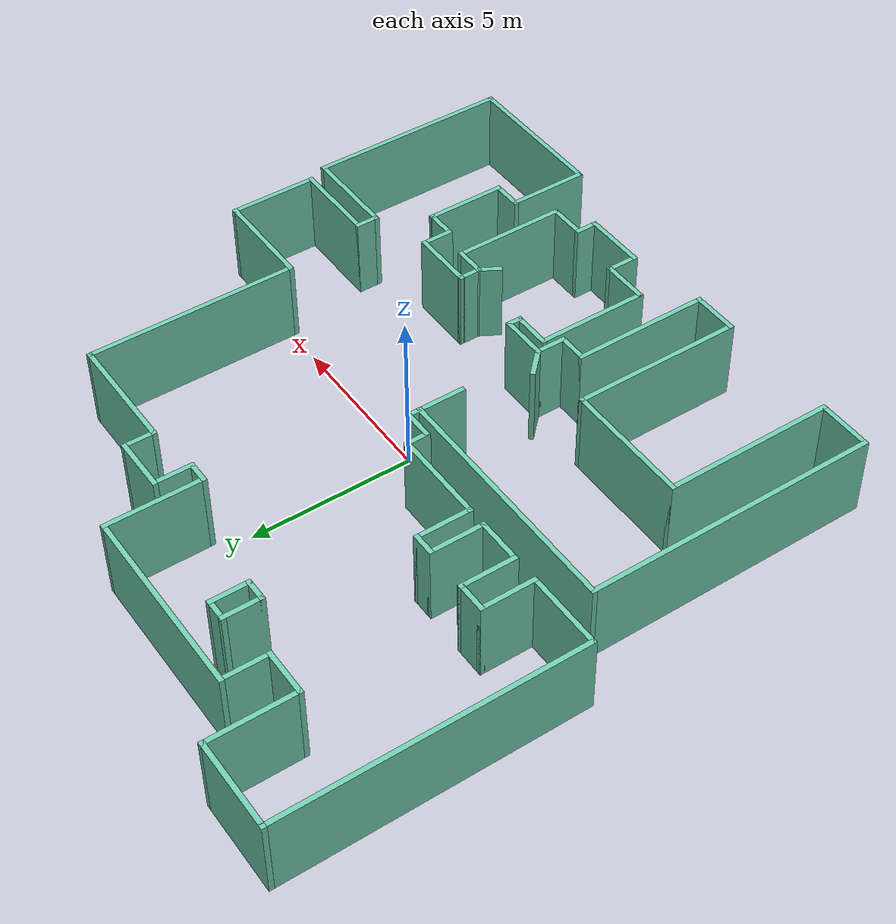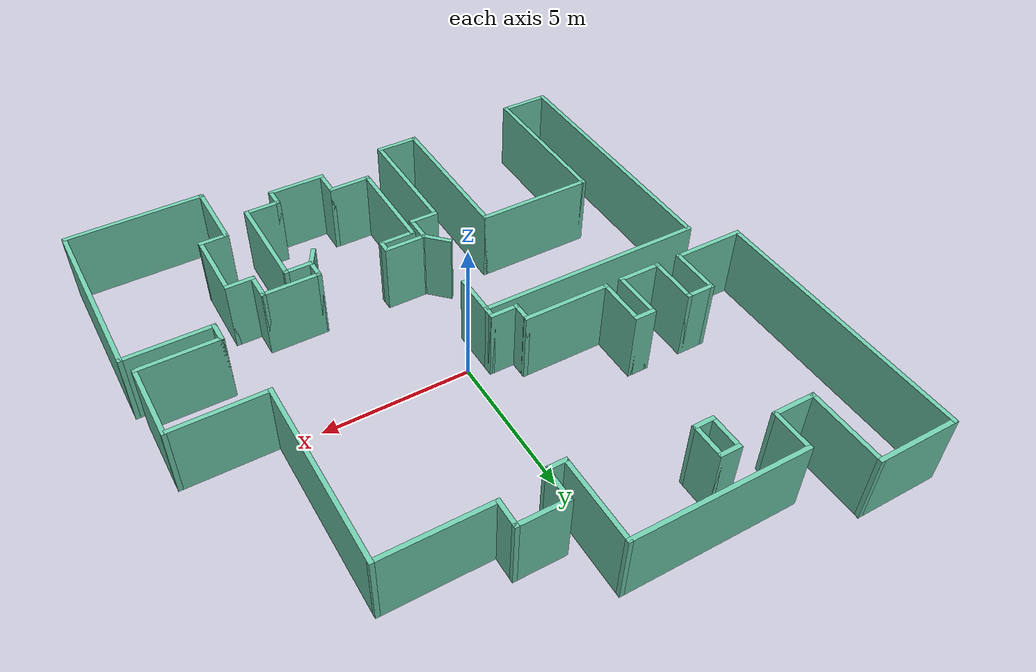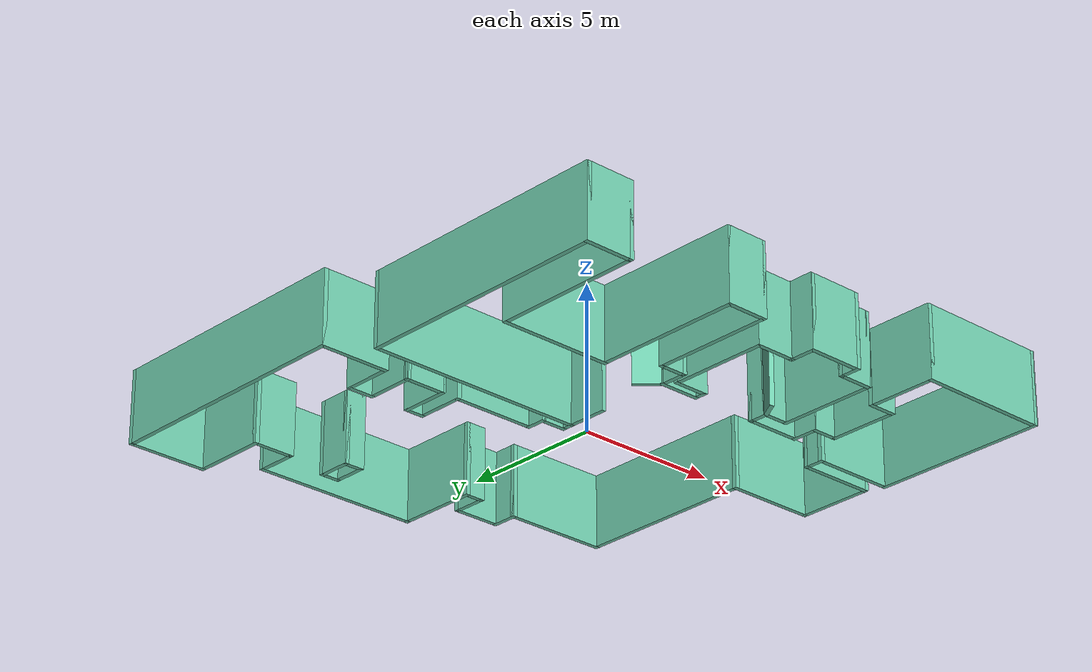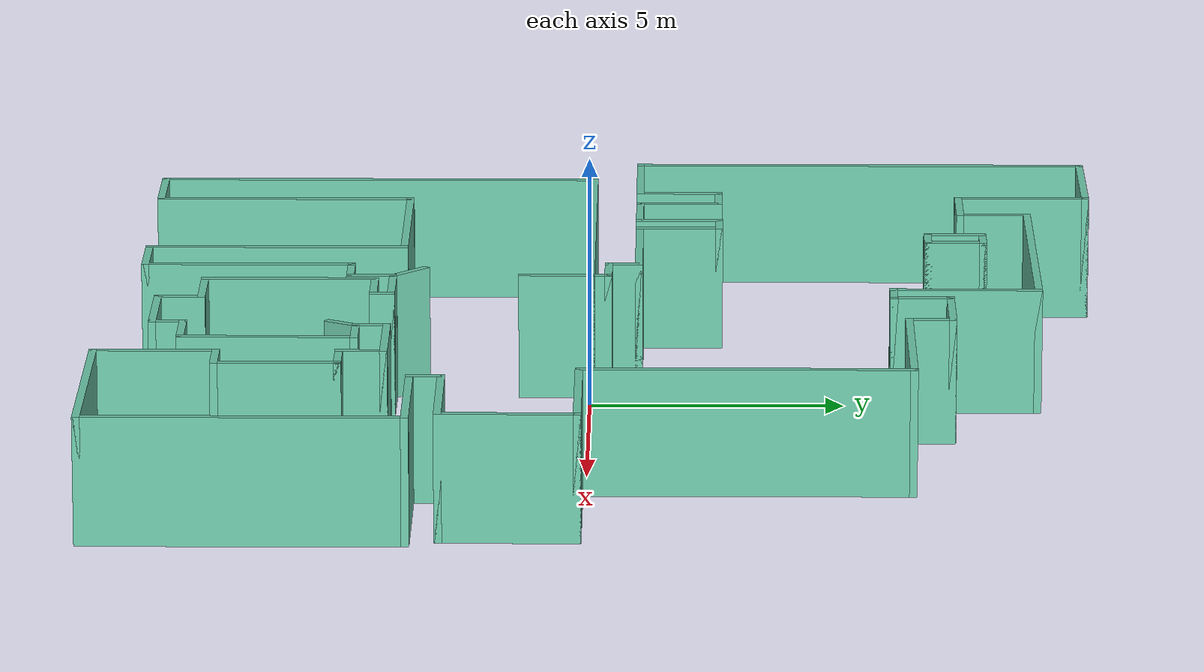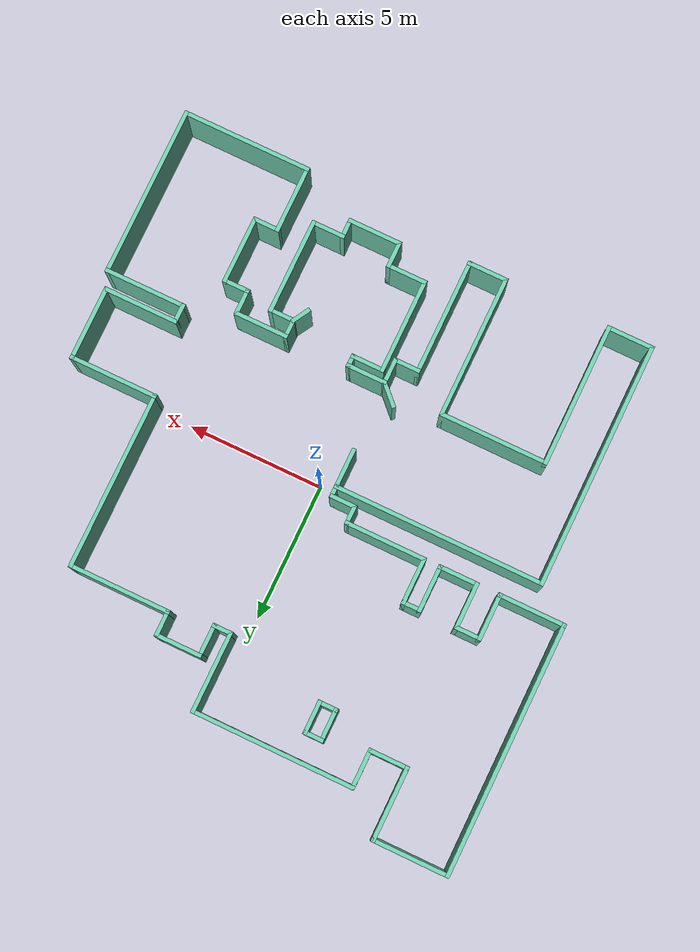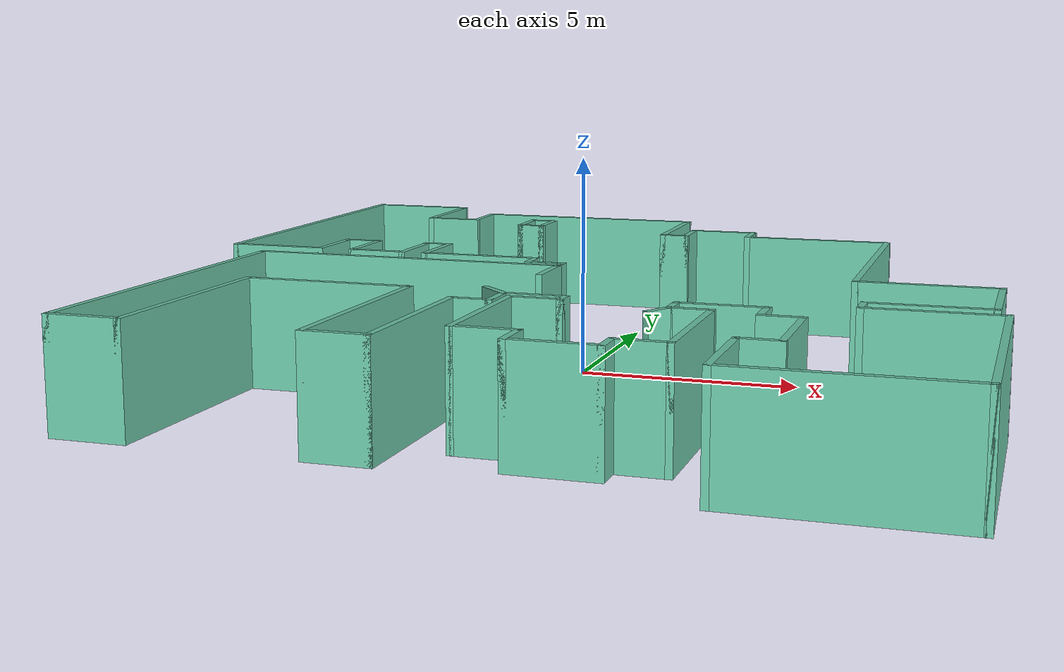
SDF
<?xml version='1.0'?>
<sdf version='1.6'>
  <model name='map_119'>
    <pose frame=''>0.052995 0.309843 0 0 -0 0</pose>
    <link name='Wall_10'>
      <collision name='Wall_10_Collision'>
        <geometry>
          <box>
            <size>9.25 0.15 2.5</size>
          </box>
        </geometry>
        <pose frame=''>0 0 1.25 0 -0 0</pose>
      </collision>
      <visual name='Wall_10_Visual'>
        <pose frame=''>0 0 1.25 0 -0 0</pose>
        <geometry>
          <box>
            <size>9.25 0.15 2.5</size>
          </box>
        </geometry>
        <material>
          <script>
            <uri>file://media/materials/scripts/gazebo.material</uri>
            <name>Gazebo/Grey</name>
          </script>
          <ambient>0.435294 0.796078 0.67451 1</ambient>
        </material>
        <meta>
          <layer>0</layer>
        </meta>
      </visual>
      <pose frame=''>-9.525 5.2 0 0 -0 -1.5708</pose>
    </link>
    <link name='Wall_100'>
      <collision name='Wall_100_Collision'>
        <geometry>
          <box>
            <size>1.25 0.15 2.5</size>
          </box>
        </geometry>
        <pose frame=''>0 0 1.25 0 -0 0</pose>
      </collision>
      <visual name='Wall_100_Visual'>
        <pose frame=''>0 0 1.25 0 -0 0</pose>
        <geometry>
          <box>
            <size>1.25 0.15 2.5</size>
          </box>
        </geometry>
        <material>
          <script>
            <uri>file://media/materials/scripts/gazebo.material</uri>
            <name>Gazebo/Grey</name>
          </script>
          <ambient>0.435294 0.796078 0.67451 1</ambient>
        </material>
        <meta>
          <layer>0</layer>
        </meta>
      </visual>
      <pose frame=''>-3.28112 6.98822 0 0 -0 -1.5708</pose>
    </link>
    <link name='Wall_101'>
      <collision name='Wall_101_Collision'>
        <geometry>
          <box>
            <size>0.75 0.15 2.5</size>
          </box>
        </geometry>
        <pose frame=''>0 0 1.25 0 -0 0</pose>
      </collision>
      <visual name='Wall_101_Visual'>
        <pose frame=''>0 0 1.25 0 -0 0</pose>
        <geometry>
          <box>
            <size>0.75 0.15 2.5</size>
          </box>
        </geometry>
        <material>
          <script>
            <uri>file://media/materials/scripts/gazebo.material</uri>
            <name>Gazebo/Grey</name>
          </script>
          <ambient>0.435294 0.796078 0.67451 1</ambient>
        </material>
        <meta>
          <layer>0</layer>
        </meta>
      </visual>
      <pose frame=''>-3.58112 6.43822 0 0 -0 3.14159</pose>
    </link>
    <link name='Wall_12'>
      <collision name='Wall_12_Collision'>
        <geometry>
          <box>
            <size>2.5 0.15 2.5</size>
          </box>
        </geometry>
        <pose frame=''>0 0 1.25 0 -0 0</pose>
      </collision>
      <visual name='Wall_12_Visual'>
        <pose frame=''>0 0 1.25 0 -0 0</pose>
        <geometry>
          <box>
            <size>2.5 0.15 2.5</size>
          </box>
        </geometry>
        <material>
          <script>
            <uri>file://media/materials/scripts/gazebo.material</uri>
            <name>Gazebo/Grey</name>
          </script>
          <ambient>0.435294 0.796078 0.67451 1</ambient>
        </material>
        <meta>
          <layer>0</layer>
        </meta>
      </visual>
      <pose frame=''>-8.35 0.65 0 0 -0 0</pose>
    </link>
    <link name='Wall_13'>
      <collision name='Wall_13_Collision'>
        <geometry>
          <box>
            <size>1.75 0.15 2.5</size>
          </box>
        </geometry>
        <pose frame=''>0 0 1.25 0 -0 0</pose>
      </collision>
      <visual name='Wall_13_Visual'>
        <pose frame=''>0 0 1.25 0 -0 0</pose>
        <geometry>
          <box>
            <size>1.75 0.15 2.5</size>
          </box>
        </geometry>
        <material>
          <script>
            <uri>file://media/materials/scripts/gazebo.material</uri>
            <name>Gazebo/Grey</name>
          </script>
          <ambient>0.435294 0.796078 0.67451 1</ambient>
        </material>
        <meta>
          <layer>0</layer>
        </meta>
      </visual>
      <pose frame=''>-7.175 1.45 0 0 -0 1.5708</pose>
    </link>
    <link name='Wall_14'>
      <collision name='Wall_14_Collision'>
        <geometry>
          <box>
            <size>1 0.15 2.5</size>
          </box>
        </geometry>
        <pose frame=''>0 0 1.25 0 -0 0</pose>
      </collision>
      <visual name='Wall_14_Visual'>
        <pose frame=''>0 0 1.25 0 -0 0</pose>
        <geometry>
          <box>
            <size>1 0.15 2.5</size>
          </box>
        </geometry>
        <material>
          <script>
            <uri>file://media/materials/scripts/gazebo.material</uri>
            <name>Gazebo/Grey</name>
          </script>
          <ambient>0.435294 0.796078 0.67451 1</ambient>
        </material>
        <meta>
          <layer>0</layer>
        </meta>
      </visual>
      <pose frame=''>-6.75 2.25 0 0 -0 0</pose>
    </link>
    <link name='Wall_15'>
      <collision name='Wall_15_Collision'>
        <geometry>
          <box>
            <size>1.75 0.15 2.5</size>
          </box>
        </geometry>
        <pose frame=''>0 0 1.25 0 -0 0</pose>
      </collision>
      <visual name='Wall_15_Visual'>
        <pose frame=''>0 0 1.25 0 -0 0</pose>
        <geometry>
          <box>
            <size>1.75 0.15 2.5</size>
          </box>
        </geometry>
        <material>
          <script>
            <uri>file://media/materials/scripts/gazebo.material</uri>
            <name>Gazebo/Grey</name>
          </script>
          <ambient>0.435294 0.796078 0.67451 1</ambient>
        </material>
        <meta>
          <layer>0</layer>
        </meta>
      </visual>
      <pose frame=''>-6.325 1.45 0 0 -0 -1.5708</pose>
    </link>
    <link name='Wall_21'>
      <collision name='Wall_21_Collision'>
        <geometry>
          <box>
            <size>1.5 0.15 2.5</size>
          </box>
        </geometry>
        <pose frame=''>0 0 1.25 0 -0 0</pose>
      </collision>
      <visual name='Wall_21_Visual'>
        <pose frame=''>0 0 1.25 0 -0 0</pose>
        <geometry>
          <box>
            <size>1.5 0.15 2.5</size>
          </box>
        </geometry>
        <material>
          <script>
            <uri>file://media/materials/scripts/gazebo.material</uri>
            <name>Gazebo/Grey</name>
          </script>
          <ambient>0.435294 0.796078 0.67451 1</ambient>
        </material>
        <meta>
          <layer>0</layer>
        </meta>
      </visual>
      <pose frame=''>-5.65 0.65 0 0 -0 0</pose>
    </link>
    <link name='Wall_22'>
      <collision name='Wall_22_Collision'>
        <geometry>
          <box>
            <size>1.75 0.15 2.5</size>
          </box>
        </geometry>
        <pose frame=''>0 0 1.25 0 -0 0</pose>
      </collision>
      <visual name='Wall_22_Visual'>
        <pose frame=''>0 0 1.25 0 -0 0</pose>
        <geometry>
          <box>
            <size>1.75 0.15 2.5</size>
          </box>
        </geometry>
        <material>
          <script>
            <uri>file://media/materials/scripts/gazebo.material</uri>
            <name>Gazebo/Grey</name>
          </script>
          <ambient>0.435294 0.796078 0.67451 1</ambient>
        </material>
        <meta>
          <layer>0</layer>
        </meta>
      </visual>
      <pose frame=''>-4.975 1.45 0 0 -0 1.5708</pose>
    </link>
    <link name='Wall_23'>
      <collision name='Wall_23_Collision'>
        <geometry>
          <box>
            <size>0.75 0.15 2.5</size>
          </box>
        </geometry>
        <pose frame=''>0 0 1.25 0 -0 0</pose>
      </collision>
      <visual name='Wall_23_Visual'>
        <pose frame=''>0 0 1.25 0 -0 0</pose>
        <geometry>
          <box>
            <size>0.75 0.15 2.5</size>
          </box>
        </geometry>
        <material>
          <script>
            <uri>file://media/materials/scripts/gazebo.material</uri>
            <name>Gazebo/Grey</name>
          </script>
          <ambient>0.435294 0.796078 0.67451 1</ambient>
        </material>
        <meta>
          <layer>0</layer>
        </meta>
      </visual>
      <pose frame=''>-4.675 2.25 0 0 -0 0</pose>
    </link>
    <link name='Wall_24'>
      <collision name='Wall_24_Collision'>
        <geometry>
          <box>
            <size>1.75 0.15 2.5</size>
          </box>
        </geometry>
        <pose frame=''>0 0 1.25 0 -0 0</pose>
      </collision>
      <visual name='Wall_24_Visual'>
        <pose frame=''>0 0 1.25 0 -0 0</pose>
        <geometry>
          <box>
            <size>1.75 0.15 2.5</size>
          </box>
        </geometry>
        <material>
          <script>
            <uri>file://media/materials/scripts/gazebo.material</uri>
            <name>Gazebo/Grey</name>
          </script>
          <ambient>0.435294 0.796078 0.67451 1</ambient>
        </material>
        <meta>
          <layer>0</layer>
        </meta>
      </visual>
      <pose frame=''>-4.375 1.45 0 0 -0 -1.5708</pose>
    </link>
    <link name='Wall_25'>
      <collision name='Wall_25_Collision'>
        <geometry>
          <box>
            <size>3 0.15 2.5</size>
          </box>
        </geometry>
        <pose frame=''>0 0 1.25 0 -0 0</pose>
      </collision>
      <visual name='Wall_25_Visual'>
        <pose frame=''>0 0 1.25 0 -0 0</pose>
        <geometry>
          <box>
            <size>3 0.15 2.5</size>
          </box>
        </geometry>
        <material>
          <script>
            <uri>file://media/materials/scripts/gazebo.material</uri>
            <name>Gazebo/Grey</name>
          </script>
          <ambient>0.435294 0.796078 0.67451 1</ambient>
        </material>
        <meta>
          <layer>0</layer>
        </meta>
      </visual>
      <pose frame=''>-2.95 0.65 0 0 -0 0</pose>
    </link>
    <link name='Wall_26'>
      <collision name='Wall_26_Collision'>
        <geometry>
          <box>
            <size>0.75 0.15 2.5</size>
          </box>
        </geometry>
        <pose frame=''>0 0 1.25 0 -0 0</pose>
      </collision>
      <visual name='Wall_26_Visual'>
        <pose frame=''>0 0 1.25 0 -0 0</pose>
        <geometry>
          <box>
            <size>0.75 0.15 2.5</size>
          </box>
        </geometry>
        <material>
          <script>
            <uri>file://media/materials/scripts/gazebo.material</uri>
            <name>Gazebo/Grey</name>
          </script>
          <ambient>0.435294 0.796078 0.67451 1</ambient>
        </material>
        <meta>
          <layer>0</layer>
        </meta>
      </visual>
      <pose frame=''>-1.525 0.35 0 0 -0 -1.5708</pose>
    </link>
    <link name='Wall_27'>
      <collision name='Wall_27_Collision'>
        <geometry>
          <box>
            <size>1 0.15 2.5</size>
          </box>
        </geometry>
        <pose frame=''>0 0 1.25 0 -0 0</pose>
      </collision>
      <visual name='Wall_27_Visual'>
        <pose frame=''>0 0 1.25 0 -0 0</pose>
        <geometry>
          <box>
            <size>1 0.15 2.5</size>
          </box>
        </geometry>
        <material>
          <script>
            <uri>file://media/materials/scripts/gazebo.material</uri>
            <name>Gazebo/Grey</name>
          </script>
          <ambient>0.435294 0.796078 0.67451 1</ambient>
        </material>
        <meta>
          <layer>0</layer>
        </meta>
      </visual>
      <pose frame=''>-1.1 0.05 0 0 -0 0</pose>
    </link>
    <link name='Wall_30'>
      <collision name='Wall_30_Collision'>
        <geometry>
          <box>
            <size>0.5 0.15 2.5</size>
          </box>
        </geometry>
        <pose frame=''>0 0 1.25 0 -0 0</pose>
      </collision>
      <visual name='Wall_30_Visual'>
        <pose frame=''>0 0 1.25 0 -0 0</pose>
        <geometry>
          <box>
            <size>0.5 0.15 2.5</size>
          </box>
        </geometry>
        <material>
          <script>
            <uri>file://media/materials/scripts/gazebo.material</uri>
            <name>Gazebo/Grey</name>
          </script>
          <ambient>0.435294 0.796078 0.67451 1</ambient>
        </material>
        <meta>
          <layer>0</layer>
        </meta>
      </visual>
      <pose frame=''>-0.675 -0.125 0 0 -0 -1.5708</pose>
    </link>
    <link name='Wall_31'>
      <collision name='Wall_31_Collision'>
        <geometry>
          <box>
            <size>7.75 0.15 2.5</size>
          </box>
        </geometry>
        <pose frame=''>0 0 1.25 0 -0 0</pose>
      </collision>
      <visual name='Wall_31_Visual'>
        <pose frame=''>0 0 1.25 0 -0 0</pose>
        <geometry>
          <box>
            <size>7.75 0.15 2.5</size>
          </box>
        </geometry>
        <material>
          <script>
            <uri>file://media/materials/scripts/gazebo.material</uri>
            <name>Gazebo/Grey</name>
          </script>
          <ambient>0.435294 0.796078 0.67451 1</ambient>
        </material>
        <meta>
          <layer>0</layer>
        </meta>
      </visual>
      <pose frame=''>-4.475 -0.3 0 0 -0 3.14159</pose>
    </link>
    <link name='Wall_32'>
      <collision name='Wall_32_Collision'>
        <geometry>
          <box>
            <size>9 0.15 2.5</size>
          </box>
        </geometry>
        <pose frame=''>0 0 1.25 0 -0 0</pose>
      </collision>
      <visual name='Wall_32_Visual'>
        <pose frame=''>0 0 1.25 0 -0 0</pose>
        <geometry>
          <box>
            <size>9 0.15 2.5</size>
          </box>
        </geometry>
        <material>
          <script>
            <uri>file://media/materials/scripts/gazebo.material</uri>
            <name>Gazebo/Grey</name>
          </script>
          <ambient>0.435294 0.796078 0.67451 1</ambient>
        </material>
        <meta>
          <layer>0</layer>
        </meta>
      </visual>
      <pose frame=''>-8.275 -4.725 0 0 -0 -1.5708</pose>
    </link>
    <link name='Wall_33'>
      <collision name='Wall_33_Collision'>
        <geometry>
          <box>
            <size>1.75 0.15 2.5</size>
          </box>
        </geometry>
        <pose frame=''>0 0 1.25 0 -0 0</pose>
      </collision>
      <visual name='Wall_33_Visual'>
        <pose frame=''>0 0 1.25 0 -0 0</pose>
        <geometry>
          <box>
            <size>1.75 0.15 2.5</size>
          </box>
        </geometry>
        <material>
          <script>
            <uri>file://media/materials/scripts/gazebo.material</uri>
            <name>Gazebo/Grey</name>
          </script>
          <ambient>0.435294 0.796078 0.67451 1</ambient>
        </material>
        <meta>
          <layer>0</layer>
        </meta>
      </visual>
      <pose frame=''>-7.475 -9.15 0 0 -0 0</pose>
    </link>
    <link name='Wall_34'>
      <collision name='Wall_34_Collision'>
        <geometry>
          <box>
            <size>5.25 0.15 2.5</size>
          </box>
        </geometry>
        <pose frame=''>0 0 1.25 0 -0 0</pose>
      </collision>
      <visual name='Wall_34_Visual'>
        <pose frame=''>0 0 1.25 0 -0 0</pose>
        <geometry>
          <box>
            <size>5.25 0.15 2.5</size>
          </box>
        </geometry>
        <material>
          <script>
            <uri>file://media/materials/scripts/gazebo.material</uri>
            <name>Gazebo/Grey</name>
          </script>
          <ambient>0.435294 0.796078 0.67451 1</ambient>
        </material>
        <meta>
          <layer>0</layer>
        </meta>
      </visual>
      <pose frame=''>-6.675 -6.6 0 0 -0 1.5708</pose>
    </link>
    <link name='Wall_35'>
      <collision name='Wall_35_Collision'>
        <geometry>
          <box>
            <size>4 0.15 2.5</size>
          </box>
        </geometry>
        <pose frame=''>0 0 1.25 0 -0 0</pose>
      </collision>
      <visual name='Wall_35_Visual'>
        <pose frame=''>0 0 1.25 0 -0 0</pose>
        <geometry>
          <box>
            <size>4 0.15 2.5</size>
          </box>
        </geometry>
        <material>
          <script>
            <uri>file://media/materials/scripts/gazebo.material</uri>
            <name>Gazebo/Grey</name>
          </script>
          <ambient>0.435294 0.796078 0.67451 1</ambient>
        </material>
        <meta>
          <layer>0</layer>
        </meta>
      </visual>
      <pose frame=''>-4.75 -4.05 0 0 -0 0</pose>
    </link>
    <link name='Wall_36'>
      <collision name='Wall_36_Collision'>
        <geometry>
          <box>
            <size>5.25 0.15 2.5</size>
          </box>
        </geometry>
        <pose frame=''>0 0 1.25 0 -0 0</pose>
      </collision>
      <visual name='Wall_36_Visual'>
        <pose frame=''>0 0 1.25 0 -0 0</pose>
        <geometry>
          <box>
            <size>5.25 0.15 2.5</size>
          </box>
        </geometry>
        <material>
          <script>
            <uri>file://media/materials/scripts/gazebo.material</uri>
            <name>Gazebo/Grey</name>
          </script>
          <ambient>0.435294 0.796078 0.67451 1</ambient>
        </material>
        <meta>
          <layer>0</layer>
        </meta>
      </visual>
      <pose frame=''>-2.825 -6.6 0 0 -0 -1.5708</pose>
    </link>
    <link name='Wall_37'>
      <collision name='Wall_37_Collision'>
        <geometry>
          <box>
            <size>1.5 0.15 2.5</size>
          </box>
        </geometry>
        <pose frame=''>0 0 1.25 0 -0 0</pose>
      </collision>
      <visual name='Wall_37_Visual'>
        <pose frame=''>0 0 1.25 0 -0 0</pose>
        <geometry>
          <box>
            <size>1.5 0.15 2.5</size>
          </box>
        </geometry>
        <material>
          <script>
            <uri>file://media/materials/scripts/gazebo.material</uri>
            <name>Gazebo/Grey</name>
          </script>
          <ambient>0.435294 0.796078 0.67451 1</ambient>
        </material>
        <meta>
          <layer>0</layer>
        </meta>
      </visual>
      <pose frame=''>-2.15 -9.15 0 0 -0 0</pose>
    </link>
    <link name='Wall_38'>
      <collision name='Wall_38_Collision'>
        <geometry>
          <box>
            <size>4.25 0.15 2.5</size>
          </box>
        </geometry>
        <pose frame=''>0 0 1.25 0 -0 0</pose>
      </collision>
      <visual name='Wall_38_Visual'>
        <pose frame=''>0 0 1.25 0 -0 0</pose>
        <geometry>
          <box>
            <size>4.25 0.15 2.5</size>
          </box>
        </geometry>
        <material>
          <script>
            <uri>file://media/materials/scripts/gazebo.material</uri>
            <name>Gazebo/Grey</name>
          </script>
          <ambient>0.435294 0.796078 0.67451 1</ambient>
        </material>
        <meta>
          <layer>0</layer>
        </meta>
      </visual>
      <pose frame=''>-1.475 -7.1 0 0 -0 1.5708</pose>
    </link>
    <link name='Wall_39'>
      <collision name='Wall_39_Collision'>
        <geometry>
          <box>
            <size>1 0.15 2.5</size>
          </box>
        </geometry>
        <pose frame=''>0 0 1.25 0 -0 0</pose>
      </collision>
      <visual name='Wall_39_Visual'>
        <pose frame=''>0 0 1.25 0 -0 0</pose>
        <geometry>
          <box>
            <size>1 0.15 2.5</size>
          </box>
        </geometry>
        <material>
          <script>
            <uri>file://media/materials/scripts/gazebo.material</uri>
            <name>Gazebo/Grey</name>
          </script>
          <ambient>0.435294 0.796078 0.67451 1</ambient>
        </material>
        <meta>
          <layer>0</layer>
        </meta>
      </visual>
      <pose frame=''>-1.05 -5.05 0 0 -0 0</pose>
    </link>
    <link name='Wall_40'>
      <collision name='Wall_40_Collision'>
        <geometry>
          <box>
            <size>1 0.15 2.5</size>
          </box>
        </geometry>
        <pose frame=''>0 0 1.25 0 -0 0</pose>
      </collision>
      <visual name='Wall_40_Visual'>
        <pose frame=''>0 0 1.25 0 -0 0</pose>
        <geometry>
          <box>
            <size>1 0.15 2.5</size>
          </box>
        </geometry>
        <material>
          <script>
            <uri>file://media/materials/scripts/gazebo.material</uri>
            <name>Gazebo/Grey</name>
          </script>
          <ambient>0.435294 0.796078 0.67451 1</ambient>
        </material>
        <meta>
          <layer>0</layer>
        </meta>
      </visual>
      <pose frame=''>-0.625 -4.625 0 0 -0 1.5708</pose>
    </link>
    <link name='Wall_41'>
      <collision name='Wall_41_Collision'>
        <geometry>
          <box>
            <size>1.5 0.15 2.5</size>
          </box>
        </geometry>
        <pose frame=''>0 0 1.25 0 -0 0</pose>
      </collision>
      <visual name='Wall_41_Visual'>
        <pose frame=''>0 0 1.25 0 -0 0</pose>
        <geometry>
          <box>
            <size>1.5 0.15 2.5</size>
          </box>
        </geometry>
        <material>
          <script>
            <uri>file://media/materials/scripts/gazebo.material</uri>
            <name>Gazebo/Grey</name>
          </script>
          <ambient>0.435294 0.796078 0.67451 1</ambient>
        </material>
        <meta>
          <layer>0</layer>
        </meta>
      </visual>
      <pose frame=''>0.05 -4.2 0 0 -0 0</pose>
    </link>
    <link name='Wall_42'>
      <collision name='Wall_42_Collision'>
        <geometry>
          <box>
            <size>0.5 0.15 2.5</size>
          </box>
        </geometry>
        <pose frame=''>0 0 1.25 0 -0 0</pose>
      </collision>
      <visual name='Wall_42_Visual'>
        <pose frame=''>0 0 1.25 0 -0 0</pose>
        <geometry>
          <box>
            <size>0.5 0.15 2.5</size>
          </box>
        </geometry>
        <material>
          <script>
            <uri>file://media/materials/scripts/gazebo.material</uri>
            <name>Gazebo/Grey</name>
          </script>
          <ambient>0.435294 0.796078 0.67451 1</ambient>
        </material>
        <meta>
          <layer>0</layer>
        </meta>
      </visual>
      <pose frame=''>0.725 -4.375 0 0 -0 -1.5708</pose>
    </link>
    <link name='Wall_43'>
      <collision name='Wall_43_Collision'>
        <geometry>
          <box>
            <size>1.25 0.15 2.5</size>
          </box>
        </geometry>
        <pose frame=''>0 0 1.25 0 -0 0</pose>
      </collision>
      <visual name='Wall_43_Visual'>
        <pose frame=''>0 0 1.25 0 -0 0</pose>
        <geometry>
          <box>
            <size>1.25 0.15 2.5</size>
          </box>
        </geometry>
        <material>
          <script>
            <uri>file://media/materials/scripts/gazebo.material</uri>
            <name>Gazebo/Grey</name>
          </script>
          <ambient>0.435294 0.796078 0.67451 1</ambient>
        </material>
        <meta>
          <layer>0</layer>
        </meta>
      </visual>
      <pose frame=''>0.175 -4.55 0 0 -0 3.14159</pose>
    </link>
    <link name='Wall_44'>
      <collision name='Wall_44_Collision'>
        <geometry>
          <box>
            <size>3.5 0.15 2.5</size>
          </box>
        </geometry>
        <pose frame=''>0 0 1.25 0 -0 0</pose>
      </collision>
      <visual name='Wall_44_Visual'>
        <pose frame=''>0 0 1.25 0 -0 0</pose>
        <geometry>
          <box>
            <size>3.5 0.15 2.5</size>
          </box>
        </geometry>
        <material>
          <script>
            <uri>file://media/materials/scripts/gazebo.material</uri>
            <name>Gazebo/Grey</name>
          </script>
          <ambient>0.435294 0.796078 0.67451 1</ambient>
        </material>
        <meta>
          <layer>0</layer>
        </meta>
      </visual>
      <pose frame=''>-0.375 -6.225 0 0 -0 -1.5708</pose>
    </link>
    <link name='Wall_45'>
      <collision name='Wall_45_Collision'>
        <geometry>
          <box>
            <size>1.5 0.15 2.5</size>
          </box>
        </geometry>
        <pose frame=''>0 0 1.25 0 -0 0</pose>
      </collision>
      <visual name='Wall_45_Visual'>
        <pose frame=''>0 0 1.25 0 -0 0</pose>
        <geometry>
          <box>
            <size>1.5 0.15 2.5</size>
          </box>
        </geometry>
        <material>
          <script>
            <uri>file://media/materials/scripts/gazebo.material</uri>
            <name>Gazebo/Grey</name>
          </script>
          <ambient>0.435294 0.796078 0.67451 1</ambient>
        </material>
        <meta>
          <layer>0</layer>
        </meta>
      </visual>
      <pose frame=''>0.3 -7.9 0 0 -0 0</pose>
    </link>
    <link name='Wall_46'>
      <collision name='Wall_46_Collision'>
        <geometry>
          <box>
            <size>1 0.15 2.5</size>
          </box>
        </geometry>
        <pose frame=''>0 0 1.25 0 -0 0</pose>
      </collision>
      <visual name='Wall_46_Visual'>
        <pose frame=''>0 0 1.25 0 -0 0</pose>
        <geometry>
          <box>
            <size>1 0.15 2.5</size>
          </box>
        </geometry>
        <material>
          <script>
            <uri>file://media/materials/scripts/gazebo.material</uri>
            <name>Gazebo/Grey</name>
          </script>
          <ambient>0.435294 0.796078 0.67451 1</ambient>
        </material>
        <meta>
          <layer>0</layer>
        </meta>
      </visual>
      <pose frame=''>0.975 -8.325 0 0 -0 -1.5708</pose>
    </link>
    <link name='Wall_49'>
      <collision name='Wall_49_Collision'>
        <geometry>
          <box>
            <size>2 0.15 2.5</size>
          </box>
        </geometry>
        <pose frame=''>0 0 1.25 0 -0 0</pose>
      </collision>
      <visual name='Wall_49_Visual'>
        <pose frame=''>0 0 1.25 0 -0 0</pose>
        <geometry>
          <box>
            <size>2 0.15 2.5</size>
          </box>
        </geometry>
        <material>
          <script>
            <uri>file://media/materials/scripts/gazebo.material</uri>
            <name>Gazebo/Grey</name>
          </script>
          <ambient>0.435294 0.796078 0.67451 1</ambient>
        </material>
        <meta>
          <layer>0</layer>
        </meta>
      </visual>
      <pose frame=''>1.9 -8.75 0 0 -0 0</pose>
    </link>
    <link name='Wall_50'>
      <collision name='Wall_50_Collision'>
        <geometry>
          <box>
            <size>0.75 0.15 2.5</size>
          </box>
        </geometry>
        <pose frame=''>0 0 1.25 0 -0 0</pose>
      </collision>
      <visual name='Wall_50_Visual'>
        <pose frame=''>0 0 1.25 0 -0 0</pose>
        <geometry>
          <box>
            <size>0.75 0.15 2.5</size>
          </box>
        </geometry>
        <material>
          <script>
            <uri>file://media/materials/scripts/gazebo.material</uri>
            <name>Gazebo/Grey</name>
          </script>
          <ambient>0.435294 0.796078 0.67451 1</ambient>
        </material>
        <meta>
          <layer>0</layer>
        </meta>
      </visual>
      <pose frame=''>2.825 -8.45 0 0 -0 1.5708</pose>
    </link>
    <link name='Wall_51'>
      <collision name='Wall_51_Collision'>
        <geometry>
          <box>
            <size>1.25 0.15 2.5</size>
          </box>
        </geometry>
        <pose frame=''>0 0 1.25 0 -0 0</pose>
      </collision>
      <visual name='Wall_51_Visual'>
        <pose frame=''>0 0 1.25 0 -0 0</pose>
        <geometry>
          <box>
            <size>1.25 0.15 2.5</size>
          </box>
        </geometry>
        <material>
          <script>
            <uri>file://media/materials/scripts/gazebo.material</uri>
            <name>Gazebo/Grey</name>
          </script>
          <ambient>0.435294 0.796078 0.67451 1</ambient>
        </material>
        <meta>
          <layer>0</layer>
        </meta>
      </visual>
      <pose frame=''>3.375 -8.15 0 0 -0 0</pose>
    </link>
    <link name='Wall_52'>
      <collision name='Wall_52_Collision'>
        <geometry>
          <box>
            <size>3.5 0.15 2.5</size>
          </box>
        </geometry>
        <pose frame=''>0 0 1.25 0 -0 0</pose>
      </collision>
      <visual name='Wall_52_Visual'>
        <pose frame=''>0 0 1.25 0 -0 0</pose>
        <geometry>
          <box>
            <size>3.5 0.15 2.5</size>
          </box>
        </geometry>
        <material>
          <script>
            <uri>file://media/materials/scripts/gazebo.material</uri>
            <name>Gazebo/Grey</name>
          </script>
          <ambient>0.435294 0.796078 0.67451 1</ambient>
        </material>
        <meta>
          <layer>0</layer>
        </meta>
      </visual>
      <pose frame=''>3.925 -6.475 0 0 -0 1.5708</pose>
    </link>
    <link name='Wall_58'>
      <collision name='Wall_58_Collision'>
        <geometry>
          <box>
            <size>1 0.15 2.5</size>
          </box>
        </geometry>
        <pose frame=''>0 0 1.25 0 -0 0</pose>
      </collision>
      <visual name='Wall_58_Visual'>
        <pose frame=''>0 0 1.25 0 -0 0</pose>
        <geometry>
          <box>
            <size>1 0.15 2.5</size>
          </box>
        </geometry>
        <material>
          <script>
            <uri>file://media/materials/scripts/gazebo.material</uri>
            <name>Gazebo/Grey</name>
          </script>
          <ambient>0.435294 0.796078 0.67451 1</ambient>
        </material>
        <meta>
          <layer>0</layer>
        </meta>
      </visual>
      <pose frame=''>3.5 -4.8 0 0 -0 3.14159</pose>
    </link>
    <link name='Wall_59'>
      <collision name='Wall_59_Collision'>
        <geometry>
          <box>
            <size>0.75 0.15 2.5</size>
          </box>
        </geometry>
        <pose frame=''>0 0 1.25 0 -0 0</pose>
      </collision>
      <visual name='Wall_59_Visual'>
        <pose frame=''>0 0 1.25 0 -0 0</pose>
        <geometry>
          <box>
            <size>0.75 0.15 2.5</size>
          </box>
        </geometry>
        <material>
          <script>
            <uri>file://media/materials/scripts/gazebo.material</uri>
            <name>Gazebo/Grey</name>
          </script>
          <ambient>0.435294 0.796078 0.67451 1</ambient>
        </material>
        <meta>
          <layer>0</layer>
        </meta>
      </visual>
      <pose frame=''>3.075 -4.5 0 0 -0 1.5708</pose>
    </link>
    <link name='Wall_60'>
      <collision name='Wall_60_Collision'>
        <geometry>
          <box>
            <size>2 0.15 2.5</size>
          </box>
        </geometry>
        <pose frame=''>0 0 1.25 0 -0 0</pose>
      </collision>
      <visual name='Wall_60_Visual'>
        <pose frame=''>0 0 1.25 0 -0 0</pose>
        <geometry>
          <box>
            <size>2 0.15 2.5</size>
          </box>
        </geometry>
        <material>
          <script>
            <uri>file://media/materials/scripts/gazebo.material</uri>
            <name>Gazebo/Grey</name>
          </script>
          <ambient>0.435294 0.796078 0.67451 1</ambient>
        </material>
        <meta>
          <layer>0</layer>
        </meta>
      </visual>
      <pose frame=''>4 -4.2 0 0 -0 0</pose>
    </link>
    <link name='Wall_61'>
      <collision name='Wall_61_Collision'>
        <geometry>
          <box>
            <size>1 0.15 2.5</size>
          </box>
        </geometry>
        <pose frame=''>0 0 1.25 0 -0 0</pose>
      </collision>
      <visual name='Wall_61_Visual'>
        <pose frame=''>0 0 1.25 0 -0 0</pose>
        <geometry>
          <box>
            <size>1 0.15 2.5</size>
          </box>
        </geometry>
        <material>
          <script>
            <uri>file://media/materials/scripts/gazebo.material</uri>
            <name>Gazebo/Grey</name>
          </script>
          <ambient>0.435294 0.796078 0.67451 1</ambient>
        </material>
        <meta>
          <layer>0</layer>
        </meta>
      </visual>
      <pose frame=''>4.925 -4.625 0 0 -0 -1.5708</pose>
    </link>
    <link name='Wall_62'>
      <collision name='Wall_62_Collision'>
        <geometry>
          <box>
            <size>1 0.15 2.5</size>
          </box>
        </geometry>
        <pose frame=''>0 0 1.25 0 -0 0</pose>
      </collision>
      <visual name='Wall_62_Visual'>
        <pose frame=''>0 0 1.25 0 -0 0</pose>
        <geometry>
          <box>
            <size>1 0.15 2.5</size>
          </box>
        </geometry>
        <material>
          <script>
            <uri>file://media/materials/scripts/gazebo.material</uri>
            <name>Gazebo/Grey</name>
          </script>
          <ambient>0.435294 0.796078 0.67451 1</ambient>
        </material>
        <meta>
          <layer>0</layer>
        </meta>
      </visual>
      <pose frame=''>5.35 -5.05 0 0 -0 0</pose>
    </link>
    <link name='Wall_63'>
      <collision name='Wall_63_Collision'>
        <geometry>
          <box>
            <size>2.5 0.15 2.5</size>
          </box>
        </geometry>
        <pose frame=''>0 0 1.25 0 -0 0</pose>
      </collision>
      <visual name='Wall_63_Visual'>
        <pose frame=''>0 0 1.25 0 -0 0</pose>
        <geometry>
          <box>
            <size>2.5 0.15 2.5</size>
          </box>
        </geometry>
        <material>
          <script>
            <uri>file://media/materials/scripts/gazebo.material</uri>
            <name>Gazebo/Grey</name>
          </script>
          <ambient>0.435294 0.796078 0.67451 1</ambient>
        </material>
        <meta>
          <layer>0</layer>
        </meta>
      </visual>
      <pose frame=''>5.775 -6.225 0 0 -0 -1.5708</pose>
    </link>
    <link name='Wall_64'>
      <collision name='Wall_64_Collision'>
        <geometry>
          <box>
            <size>1 0.15 2.5</size>
          </box>
        </geometry>
        <pose frame=''>0 0 1.25 0 -0 0</pose>
      </collision>
      <visual name='Wall_64_Visual'>
        <pose frame=''>0 0 1.25 0 -0 0</pose>
        <geometry>
          <box>
            <size>1 0.15 2.5</size>
          </box>
        </geometry>
        <material>
          <script>
            <uri>file://media/materials/scripts/gazebo.material</uri>
            <name>Gazebo/Grey</name>
          </script>
          <ambient>0.435294 0.796078 0.67451 1</ambient>
        </material>
        <meta>
          <layer>0</layer>
        </meta>
      </visual>
      <pose frame=''>5.35 -7.4 0 0 -0 3.14159</pose>
    </link>
    <link name='Wall_65'>
      <collision name='Wall_65_Collision'>
        <geometry>
          <box>
            <size>2.5 0.15 2.5</size>
          </box>
        </geometry>
        <pose frame=''>0 0 1.25 0 -0 0</pose>
      </collision>
      <visual name='Wall_65_Visual'>
        <pose frame=''>0 0 1.25 0 -0 0</pose>
        <geometry>
          <box>
            <size>2.5 0.15 2.5</size>
          </box>
        </geometry>
        <material>
          <script>
            <uri>file://media/materials/scripts/gazebo.material</uri>
            <name>Gazebo/Grey</name>
          </script>
          <ambient>0.435294 0.796078 0.67451 1</ambient>
        </material>
        <meta>
          <layer>0</layer>
        </meta>
      </visual>
      <pose frame=''>4.925 -8.575 0 0 -0 -1.5708</pose>
    </link>
    <link name='Wall_66'>
      <collision name='Wall_66_Collision'>
        <geometry>
          <box>
            <size>4.75 0.15 2.5</size>
          </box>
        </geometry>
        <pose frame=''>0 0 1.25 0 -0 0</pose>
      </collision>
      <visual name='Wall_66_Visual'>
        <pose frame=''>0 0 1.25 0 -0 0</pose>
        <geometry>
          <box>
            <size>4.75 0.15 2.5</size>
          </box>
        </geometry>
        <material>
          <script>
            <uri>file://media/materials/scripts/gazebo.material</uri>
            <name>Gazebo/Grey</name>
          </script>
          <ambient>0.435294 0.796078 0.67451 1</ambient>
        </material>
        <meta>
          <layer>0</layer>
        </meta>
      </visual>
      <pose frame=''>7.225 -9.75 0 0 -0 0</pose>
    </link>
    <link name='Wall_67'>
      <collision name='Wall_67_Collision'>
        <geometry>
          <box>
            <size>6.25 0.15 2.5</size>
          </box>
        </geometry>
        <pose frame=''>0 0 1.25 0 -0 0</pose>
      </collision>
      <visual name='Wall_67_Visual'>
        <pose frame=''>0 0 1.25 0 -0 0</pose>
        <geometry>
          <box>
            <size>6.25 0.15 2.5</size>
          </box>
        </geometry>
        <material>
          <script>
            <uri>file://media/materials/scripts/gazebo.material</uri>
            <name>Gazebo/Grey</name>
          </script>
          <ambient>0.435294 0.796078 0.67451 1</ambient>
        </material>
        <meta>
          <layer>0</layer>
        </meta>
      </visual>
      <pose frame=''>9.525 -6.7 0 0 -0 1.5708</pose>
    </link>
    <link name='Wall_68'>
      <collision name='Wall_68_Collision'>
        <geometry>
          <box>
            <size>3 0.15 2.5</size>
          </box>
        </geometry>
        <pose frame=''>0 0 1.25 0 -0 0</pose>
      </collision>
      <visual name='Wall_68_Visual'>
        <pose frame=''>0 0 1.25 0 -0 0</pose>
        <geometry>
          <box>
            <size>3 0.15 2.5</size>
          </box>
        </geometry>
        <material>
          <script>
            <uri>file://media/materials/scripts/gazebo.material</uri>
            <name>Gazebo/Grey</name>
          </script>
          <ambient>0.435294 0.796078 0.67451 1</ambient>
        </material>
        <meta>
          <layer>0</layer>
        </meta>
      </visual>
      <pose frame=''>8.1 -3.65 0 0 -0 3.14159</pose>
    </link>
    <link name='Wall_69'>
      <collision name='Wall_69_Collision'>
        <geometry>
          <box>
            <size>0.75 0.15 2.5</size>
          </box>
        </geometry>
        <pose frame=''>0 0 1.25 0 -0 0</pose>
      </collision>
      <visual name='Wall_69_Visual'>
        <pose frame=''>0 0 1.25 0 -0 0</pose>
        <geometry>
          <box>
            <size>0.75 0.15 2.5</size>
          </box>
        </geometry>
        <material>
          <script>
            <uri>file://media/materials/scripts/gazebo.material</uri>
            <name>Gazebo/Grey</name>
          </script>
          <ambient>0.435294 0.796078 0.67451 1</ambient>
        </material>
        <meta>
          <layer>0</layer>
        </meta>
      </visual>
      <pose frame=''>6.675 -3.35 0 0 -0 1.5708</pose>
    </link>
    <link name='Wall_70'>
      <collision name='Wall_70_Collision'>
        <geometry>
          <box>
            <size>2.75 0.15 2.5</size>
          </box>
        </geometry>
        <pose frame=''>0 0 1.25 0 -0 0</pose>
      </collision>
      <visual name='Wall_70_Visual'>
        <pose frame=''>0 0 1.25 0 -0 0</pose>
        <geometry>
          <box>
            <size>2.75 0.15 2.5</size>
          </box>
        </geometry>
        <material>
          <script>
            <uri>file://media/materials/scripts/gazebo.material</uri>
            <name>Gazebo/Grey</name>
          </script>
          <ambient>0.435294 0.796078 0.67451 1</ambient>
        </material>
        <meta>
          <layer>0</layer>
        </meta>
      </visual>
      <pose frame=''>7.975 -3.05 0 0 -0 0</pose>
    </link>
    <link name='Wall_73'>
      <collision name='Wall_73_Collision'>
        <geometry>
          <box>
            <size>2.75 0.15 2.5</size>
          </box>
        </geometry>
        <pose frame=''>0 0 1.25 0 -0 0</pose>
      </collision>
      <visual name='Wall_73_Visual'>
        <pose frame=''>0 0 1.25 0 -0 0</pose>
        <geometry>
          <box>
            <size>2.75 0.15 2.5</size>
          </box>
        </geometry>
        <material>
          <script>
            <uri>file://media/materials/scripts/gazebo.material</uri>
            <name>Gazebo/Grey</name>
          </script>
          <ambient>0.435294 0.796078 0.67451 1</ambient>
        </material>
        <meta>
          <layer>0</layer>
        </meta>
      </visual>
      <pose frame=''>9.275 -1.75 0 0 -0 1.5708</pose>
    </link>
    <link name='Wall_74'>
      <collision name='Wall_74_Collision'>
        <geometry>
          <box>
            <size>3.25 0.15 2.5</size>
          </box>
        </geometry>
        <pose frame=''>0 0 1.25 0 -0 0</pose>
      </collision>
      <visual name='Wall_74_Visual'>
        <pose frame=''>0 0 1.25 0 -0 0</pose>
        <geometry>
          <box>
            <size>3.25 0.15 2.5</size>
          </box>
        </geometry>
        <material>
          <script>
            <uri>file://media/materials/scripts/gazebo.material</uri>
            <name>Gazebo/Grey</name>
          </script>
          <ambient>0.435294 0.796078 0.67451 1</ambient>
        </material>
        <meta>
          <layer>0</layer>
        </meta>
      </visual>
      <pose frame=''>7.725 -0.45 0 0 -0 3.14159</pose>
    </link>
    <link name='Wall_75'>
      <collision name='Wall_75_Collision'>
        <geometry>
          <box>
            <size>6.5 0.15 2.5</size>
          </box>
        </geometry>
        <pose frame=''>0 0 1.25 0 -0 0</pose>
      </collision>
      <visual name='Wall_75_Visual'>
        <pose frame=''>0 0 1.25 0 -0 0</pose>
        <geometry>
          <box>
            <size>6.5 0.15 2.5</size>
          </box>
        </geometry>
        <material>
          <script>
            <uri>file://media/materials/scripts/gazebo.material</uri>
            <name>Gazebo/Grey</name>
          </script>
          <ambient>0.435294 0.796078 0.67451 1</ambient>
        </material>
        <meta>
          <layer>0</layer>
        </meta>
      </visual>
      <pose frame=''>6.175 2.725 0 0 -0 1.5708</pose>
    </link>
    <link name='Wall_76'>
      <collision name='Wall_76_Collision'>
        <geometry>
          <box>
            <size>3.75 0.15 2.5</size>
          </box>
        </geometry>
        <pose frame=''>0 0 1.25 0 -0 0</pose>
      </collision>
      <visual name='Wall_76_Visual'>
        <pose frame=''>0 0 1.25 0 -0 0</pose>
        <geometry>
          <box>
            <size>3.75 0.15 2.5</size>
          </box>
        </geometry>
        <material>
          <script>
            <uri>file://media/materials/scripts/gazebo.material</uri>
            <name>Gazebo/Grey</name>
          </script>
          <ambient>0.435294 0.796078 0.67451 1</ambient>
        </material>
        <meta>
          <layer>0</layer>
        </meta>
      </visual>
      <pose frame=''>4.375 5.9 0 0 -0 3.14159</pose>
    </link>
    <link name='Wall_77'>
      <collision name='Wall_77_Collision'>
        <geometry>
          <box>
            <size>1 0.15 2.5</size>
          </box>
        </geometry>
        <pose frame=''>0 0 1.25 0 -0 0</pose>
      </collision>
      <visual name='Wall_77_Visual'>
        <pose frame=''>0 0 1.25 0 -0 0</pose>
        <geometry>
          <box>
            <size>1 0.15 2.5</size>
          </box>
        </geometry>
        <material>
          <script>
            <uri>file://media/materials/scripts/gazebo.material</uri>
            <name>Gazebo/Grey</name>
          </script>
          <ambient>0.435294 0.796078 0.67451 1</ambient>
        </material>
        <meta>
          <layer>0</layer>
        </meta>
      </visual>
      <pose frame=''>2.575 6.325 0 0 -0 1.5708</pose>
    </link>
    <link name='Wall_78'>
      <collision name='Wall_78_Collision'>
        <geometry>
          <box>
            <size>1.75 0.15 2.5</size>
          </box>
        </geometry>
        <pose frame=''>0 0 1.25 0 -0 0</pose>
      </collision>
      <visual name='Wall_78_Visual'>
        <pose frame=''>0 0 1.25 0 -0 0</pose>
        <geometry>
          <box>
            <size>1.75 0.15 2.5</size>
          </box>
        </geometry>
        <material>
          <script>
            <uri>file://media/materials/scripts/gazebo.material</uri>
            <name>Gazebo/Grey</name>
          </script>
          <ambient>0.435294 0.796078 0.67451 1</ambient>
        </material>
        <meta>
          <layer>0</layer>
        </meta>
      </visual>
      <pose frame=''>1.775 6.75 0 0 -0 3.14159</pose>
    </link>
    <link name='Wall_79'>
      <collision name='Wall_79_Collision'>
        <geometry>
          <box>
            <size>1.25 0.15 2.5</size>
          </box>
        </geometry>
        <pose frame=''>0 0 1.25 0 -0 0</pose>
      </collision>
      <visual name='Wall_79_Visual'>
        <pose frame=''>0 0 1.25 0 -0 0</pose>
        <geometry>
          <box>
            <size>1.25 0.15 2.5</size>
          </box>
        </geometry>
        <material>
          <script>
            <uri>file://media/materials/scripts/gazebo.material</uri>
            <name>Gazebo/Grey</name>
          </script>
          <ambient>0.435294 0.796078 0.67451 1</ambient>
        </material>
        <meta>
          <layer>0</layer>
        </meta>
      </visual>
      <pose frame=''>0.975 6.2 0 0 -0 -1.5708</pose>
    </link>
    <link name='Wall_80'>
      <collision name='Wall_80_Collision'>
        <geometry>
          <box>
            <size>0.75 0.15 2.5</size>
          </box>
        </geometry>
        <pose frame=''>0 0 1.25 0 -0 0</pose>
      </collision>
      <visual name='Wall_80_Visual'>
        <pose frame=''>0 0 1.25 0 -0 0</pose>
        <geometry>
          <box>
            <size>0.75 0.15 2.5</size>
          </box>
        </geometry>
        <material>
          <script>
            <uri>file://media/materials/scripts/gazebo.material</uri>
            <name>Gazebo/Grey</name>
          </script>
          <ambient>0.435294 0.796078 0.67451 1</ambient>
        </material>
        <meta>
          <layer>0</layer>
        </meta>
      </visual>
      <pose frame=''>0.675 5.65 0 0 -0 3.14159</pose>
    </link>
    <link name='Wall_81'>
      <collision name='Wall_81_Collision'>
        <geometry>
          <box>
            <size>3 0.15 2.5</size>
          </box>
        </geometry>
        <pose frame=''>0 0 1.25 0 -0 0</pose>
      </collision>
      <visual name='Wall_81_Visual'>
        <pose frame=''>0 0 1.25 0 -0 0</pose>
        <geometry>
          <box>
            <size>3 0.15 2.5</size>
          </box>
        </geometry>
        <material>
          <script>
            <uri>file://media/materials/scripts/gazebo.material</uri>
            <name>Gazebo/Grey</name>
          </script>
          <ambient>0.435294 0.796078 0.67451 1</ambient>
        </material>
        <meta>
          <layer>0</layer>
        </meta>
      </visual>
      <pose frame=''>0.375 7.075 0 0 -0 1.5708</pose>
    </link>
    <link name='Wall_82'>
      <collision name='Wall_82_Collision'>
        <geometry>
          <box>
            <size>6 0.15 2.5</size>
          </box>
        </geometry>
        <pose frame=''>0 0 1.25 0 -0 0</pose>
      </collision>
      <visual name='Wall_82_Visual'>
        <pose frame=''>0 0 1.25 0 -0 0</pose>
        <geometry>
          <box>
            <size>6 0.15 2.5</size>
          </box>
        </geometry>
        <material>
          <script>
            <uri>file://media/materials/scripts/gazebo.material</uri>
            <name>Gazebo/Grey</name>
          </script>
          <ambient>0.435294 0.796078 0.67451 1</ambient>
        </material>
        <meta>
          <layer>0</layer>
        </meta>
      </visual>
      <pose frame=''>-2.55 8.5 0 0 -0 3.14159</pose>
    </link>
    <link name='Wall_83'>
      <collision name='Wall_83_Collision'>
        <geometry>
          <box>
            <size>1.5 0.15 2.5</size>
          </box>
        </geometry>
        <pose frame=''>0 0 1.25 0 -0 0</pose>
      </collision>
      <visual name='Wall_83_Visual'>
        <pose frame=''>0 0 1.25 0 -0 0</pose>
        <geometry>
          <box>
            <size>1.5 0.15 2.5</size>
          </box>
        </geometry>
        <material>
          <script>
            <uri>file://media/materials/scripts/gazebo.material</uri>
            <name>Gazebo/Grey</name>
          </script>
          <ambient>0.435294 0.796078 0.67451 1</ambient>
        </material>
        <meta>
          <layer>0</layer>
        </meta>
      </visual>
      <pose frame=''>-5.475 7.825 0 0 -0 -1.5708</pose>
    </link>
    <link name='Wall_84'>
      <collision name='Wall_84_Collision'>
        <geometry>
          <box>
            <size>1.5 0.15 2.5</size>
          </box>
        </geometry>
        <pose frame=''>0 0 1.25 0 -0 0</pose>
      </collision>
      <visual name='Wall_84_Visual'>
        <pose frame=''>0 0 1.25 0 -0 0</pose>
        <geometry>
          <box>
            <size>1.5 0.15 2.5</size>
          </box>
        </geometry>
        <material>
          <script>
            <uri>file://media/materials/scripts/gazebo.material</uri>
            <name>Gazebo/Grey</name>
          </script>
          <ambient>0.435294 0.796078 0.67451 1</ambient>
        </material>
        <meta>
          <layer>0</layer>
        </meta>
      </visual>
      <pose frame=''>-6.15 7.15 0 0 -0 3.14159</pose>
    </link>
    <link name='Wall_85'>
      <collision name='Wall_85_Collision'>
        <geometry>
          <box>
            <size>2.75 0.15 2.5</size>
          </box>
        </geometry>
        <pose frame=''>0 0 1.25 0 -0 0</pose>
      </collision>
      <visual name='Wall_85_Visual'>
        <pose frame=''>0 0 1.25 0 -0 0</pose>
        <geometry>
          <box>
            <size>2.75 0.15 2.5</size>
          </box>
        </geometry>
        <material>
          <script>
            <uri>file://media/materials/scripts/gazebo.material</uri>
            <name>Gazebo/Grey</name>
          </script>
          <ambient>0.435294 0.796078 0.67451 1</ambient>
        </material>
        <meta>
          <layer>0</layer>
        </meta>
      </visual>
      <pose frame=''>-6.825 8.45 0 0 -0 1.5708</pose>
    </link>
    <link name='Wall_86'>
      <collision name='Wall_86_Collision'>
        <geometry>
          <box>
            <size>2.85 0.15 2.5</size>
          </box>
        </geometry>
        <pose frame=''>0 0 1.25 0 -0 0</pose>
      </collision>
      <visual name='Wall_86_Visual'>
        <pose frame=''>0 0 1.25 0 -0 0</pose>
        <geometry>
          <box>
            <size>2.85 0.15 2.5</size>
          </box>
        </geometry>
        <material>
          <script>
            <uri>file://media/materials/scripts/gazebo.material</uri>
            <name>Gazebo/Grey</name>
          </script>
          <ambient>0.435294 0.796078 0.67451 1</ambient>
        </material>
        <meta>
          <layer>0</layer>
        </meta>
      </visual>
      <pose frame=''>-8.175 9.75 0 0 -0 3.14159</pose>
    </link>
    <link name='Wall_88'>
      <collision name='Wall_88_Collision'>
        <geometry>
          <box>
            <size>1.5 0.15 2.5</size>
          </box>
        </geometry>
        <pose frame=''>0 0 1.25 0 -0 0</pose>
      </collision>
      <visual name='Wall_88_Visual'>
        <pose frame=''>0 0 1.25 0 -0 0</pose>
        <geometry>
          <box>
            <size>1.5 0.15 2.5</size>
          </box>
        </geometry>
        <material>
          <script>
            <uri>file://media/materials/scripts/gazebo.material</uri>
            <name>Gazebo/Grey</name>
          </script>
          <ambient>0.435294 0.796078 0.67451 1</ambient>
        </material>
        <meta>
          <layer>0</layer>
        </meta>
      </visual>
      <pose frame=''>-0.675 -0.975 0 0 -0 -1.5708</pose>
    </link>
    <link name='Wall_90'>
      <collision name='Wall_90_Collision'>
        <geometry>
          <box>
            <size>1 0.15 2.5</size>
          </box>
        </geometry>
        <pose frame=''>0 0 1.25 0 -0 0</pose>
      </collision>
      <visual name='Wall_90_Visual'>
        <pose frame=''>0 0 1.25 0 -0 0</pose>
        <geometry>
          <box>
            <size>1 0.15 2.5</size>
          </box>
        </geometry>
        <material>
          <script>
            <uri>file://media/materials/scripts/gazebo.material</uri>
            <name>Gazebo/Grey</name>
          </script>
          <ambient>0.435294 0.796078 0.67451 1</ambient>
        </material>
        <meta>
          <layer>0</layer>
        </meta>
      </visual>
      <pose frame=''>-0.925521 -3.89948 0 0 -0 2.35619</pose>
    </link>
    <link name='Wall_92'>
      <collision name='Wall_92_Collision'>
        <geometry>
          <box>
            <size>0.75 0.15 2.5</size>
          </box>
        </geometry>
        <pose frame=''>0 0 1.25 0 -0 0</pose>
      </collision>
      <visual name='Wall_92_Visual'>
        <pose frame=''>0 0 1.25 0 -0 0</pose>
        <geometry>
          <box>
            <size>0.75 0.15 2.5</size>
          </box>
        </geometry>
        <material>
          <script>
            <uri>file://media/materials/scripts/gazebo.material</uri>
            <name>Gazebo/Grey</name>
          </script>
          <ambient>0.435294 0.796078 0.67451 1</ambient>
        </material>
        <meta>
          <layer>0</layer>
        </meta>
      </visual>
      <pose frame=''>2.925 -5.05981 0 0 -0 -2.0944</pose>
    </link>
    <link name='Wall_94'>
      <collision name='Wall_94_Collision'>
        <geometry>
          <box>
            <size>1.25 0.15 2.5</size>
          </box>
        </geometry>
        <pose frame=''>0 0 1.25 0 -0 0</pose>
      </collision>
      <visual name='Wall_94_Visual'>
        <pose frame=''>0 0 1.25 0 -0 0</pose>
        <geometry>
          <box>
            <size>1.25 0.15 2.5</size>
          </box>
        </geometry>
        <material>
          <script>
            <uri>file://media/materials/scripts/gazebo.material</uri>
            <name>Gazebo/Grey</name>
          </script>
          <ambient>0.435294 0.796078 0.67451 1</ambient>
        </material>
        <meta>
          <layer>0</layer>
        </meta>
      </visual>
      <pose frame=''>-3.88112 6.98822 0 0 -0 -1.5708</pose>
    </link>
    <link name='Wall_97'>
      <collision name='Wall_97_Collision'>
        <geometry>
          <box>
            <size>0.75 0.15 2.5</size>
          </box>
        </geometry>
        <pose frame=''>0 0 1.25 0 -0 0</pose>
      </collision>
      <visual name='Wall_97_Visual'>
        <pose frame=''>0 0 1.25 0 -0 0</pose>
        <geometry>
          <box>
            <size>0.75 0.15 2.5</size>
          </box>
        </geometry>
        <material>
          <script>
            <uri>file://media/materials/scripts/gazebo.material</uri>
            <name>Gazebo/Grey</name>
          </script>
          <ambient>0.435294 0.796078 0.67451 1</ambient>
        </material>
        <meta>
          <layer>0</layer>
        </meta>
      </visual>
      <pose frame=''>-3.58112 7.53822 0 0 -0 0</pose>
    </link>
    <static>1</static>
  </model>
</sdf>
